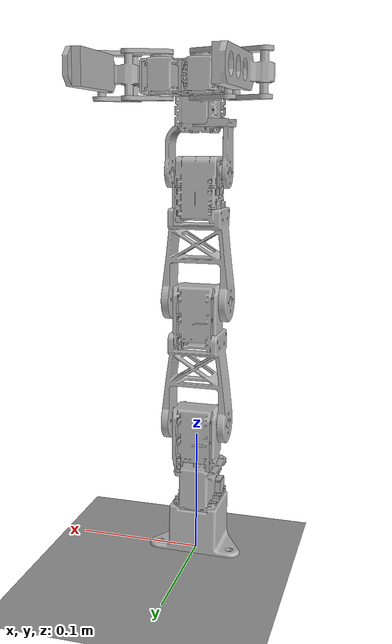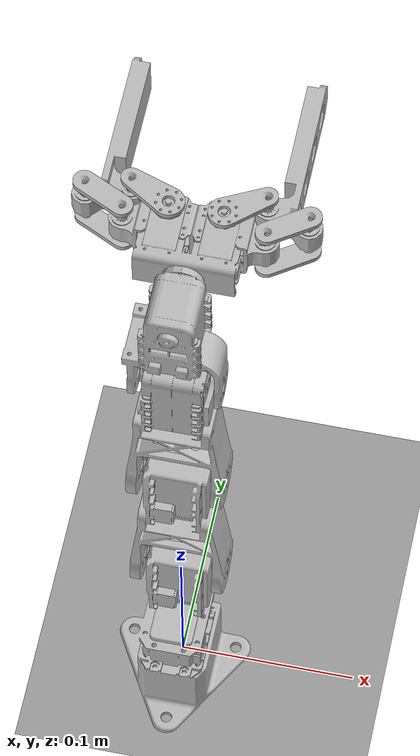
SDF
<sdf version="1.5">
 <world name="default">
  <include><uri>model://sun</uri></include>
  <include><uri>model://ground_with_visual_plugin</uri></include>
  <plugin name="cubefactory_plugin" filename="libcubefactory_plugin.so"/>
  <model name="workspace">
   <include><uri>model://rexarm_gripper</uri></include>
   <plugin name="rexarm_plugin" filename="librexarm_plugin.so"/>
   <joint type="fixed" name="ground_joint">
    <pose>0 0 -0.0542 0 0 0</pose>
    <parent>world</parent>
    <child>rexarm_gripper::rexarm::base</child>
   </joint>
   <link name="end_effector">
    <pose>0 0.12 0.38 0 0 0</pose>
    <inertial>
     <mass>1e-3</mass>
     <inertia><ixx>1e-9</ixx><ixy>0</ixy><ixz>0</ixz><iyy>1e-9</iyy><iyz>0</iyz><izz>1e-9</izz></inertia>
    </inertial>
    <collision name="collision">
     <geometry><cylinder><radius>10e-10</radius><length>10e-10</length></cylinder></geometry>
    </collision>
    <visual name="visual">
     <geometry><cylinder><radius>10e-10</radius><length>10e-10</length></cylinder></geometry>
    </visual>
    <gravity>0</gravity>
   </link>
   <joint type="fixed" name="v_tip_joint">
    <parent>rexarm_gripper::gripper::gp_base</parent>
    <child>end_effector</child>
   </joint>
  </model>
 </world>
</sdf>

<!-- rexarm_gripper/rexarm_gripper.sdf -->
<sdf version='1.5'>
<model name='rexarm_gripper'>
	<include>
		<uri>model://rexarm</uri>
	</include>

	<include>
		<uri>model://gripper</uri>
		<pose>0 0.04 0.38 1.5708 0 1.5708</pose>
	</include>

	<!-- Attach gripper to the arm -->
	<joint type='fixed' name='attach_joint'>
		<pose>0 -0.031 0 0 0 0</pose>
		<parent>rexarm::wrist</parent>
		<child>gripper::gp_wrist</child>
	</joint>
</model>
</sdf>

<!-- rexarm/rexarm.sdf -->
<sdf version='1.5'>
<model name='rexarm'>
    <link name='base'>
        <pose>0 0 0.0542 0 0 0</pose>
        <inertial>
            <mass>0.075</mass>
            <inertia>
                <ixx>2.2649e-05</ixx>
                <ixy>3.6778e-08</ixy>
                <ixz>-2.1305e-07</ixz>
                <iyy>1.2868e-05</iyy>
                <iyz>-1.1145e-06</iyz>
                <izz>1.77331e-05</izz>
            </inertia>
        </inertial>
        <collision name='collision'>
            <geometry>
                <mesh><uri>model://rexarm/meshes/base.dae</uri></mesh>
            </geometry>
        </collision>
        <visual name='visual'>
            <geometry>
                <mesh><uri>model://rexarm/meshes/base.dae</uri></mesh>
            </geometry>
        </visual>
		<gravity>0</gravity>
    </link>
    <link name='shoulder1'>
        <pose>0 0 0.1112 1.5708 0 1.5708</pose>
        <inertial>
            <mass>0.075</mass>
            <inertia>
                <ixx>2.2649e-05</ixx>
                <ixy>3.6778e-08</ixy>
                <ixz>-2.1305e-07</ixz>
                <iyy>1.2868e-05</iyy>
                <iyz>-1.1145e-06</iyz>
                <izz>1.77331e-05</izz>
            </inertia>
        </inertial>
        <collision name='collision'>
            <geometry>
                <mesh><uri>model://rexarm/meshes/shoulder1.dae</uri></mesh>
            </geometry>
        </collision>
        <visual name='visual'>
            <geometry>
                <mesh><uri>model://rexarm/meshes/shoulder1.dae</uri></mesh>
            </geometry>
        </visual>
		<gravity>0</gravity>
    </link>
    <link name='shoulder2'>
        <pose>0 0 0.2117 1.5708 0 1.5708</pose>
        <inertial>
            <mass>0.075</mass>
            <inertia>
                <ixx>2.2649e-05</ixx>
                <ixy>3.6778e-08</ixy>
                <ixz>-2.1305e-07</ixz>
                <iyy>1.2868e-05</iyy>
                <iyz>-1.1145e-06</iyz>
                <izz>1.77331e-05</izz>
            </inertia>
        </inertial>
        <collision name='collision'>
            <geometry>
                <mesh><uri>model://rexarm/meshes/shoulder2.dae</uri></mesh>
            </geometry>
        </collision>
        <visual name='visual'>
            <geometry>
                <mesh><uri>model://rexarm/meshes/shoulder2.dae</uri></mesh>
            </geometry>
        </visual>
		<gravity>0</gravity>
    </link>
    <link name='elbow'>
        <pose>0 0 0.3117 1.5708 0 1.5708</pose>
        <inertial>
            <mass>0.075</mass>
            <inertia>
                <ixx>2.2649e-05</ixx>
                <ixy>3.6778e-08</ixy>
                <ixz>-2.1305e-07</ixz>
                <iyy>1.2868e-05</iyy>
                <iyz>-1.1145e-06</iyz>
                <izz>1.77331e-05</izz>
            </inertia>
        </inertial>
        <collision name='collision'>
            <geometry>
                <mesh><uri>model://rexarm/meshes/elbow.dae</uri></mesh>
            </geometry>
        </collision>
        <visual name='visual'>
            <geometry>
                <mesh><uri>model://rexarm/meshes/elbow.dae</uri></mesh>
            </geometry>
        </visual>
		<gravity>0</gravity>
    </link>
    <link name='wrist'>
        <pose>0 0 0.3117 1.5708 0 1.5708</pose>
        <inertial>
            <mass>10e-10</mass>
            <inertia>
                <ixx>1</ixx>
                <ixy>0</ixy>
                <ixz>0</ixz>
                <iyy>1</iyy>
                <iyz>0</iyz>
                <izz>1</izz>
            </inertia>
        </inertial>
        <collision name='collision'>
            <geometry>
                <mesh><uri>model://rexarm/meshes/wrist.dae</uri></mesh>
            </geometry>
        </collision>
        <visual name='visual'>
            <geometry>
                <mesh><uri>model://rexarm/meshes/wrist.dae</uri></mesh>
            </geometry>
        </visual>
		<gravity>0</gravity>
    </link>
    <joint type='revolute' name='base_joint'>
        <pose>0 -0.039 0 0 0 0</pose>
        <parent>base</parent>
        <child>shoulder1</child>
        <axis>
            <xyz>0 1 0</xyz>
            <limit>
                <lower>-3.14</lower>
                <upper>3.14</upper>
                <effort>0.5</effort>
                <velocity>5.76</velocity>
            </limit>
        </axis>
        <physics>
            <ode>
                <max_force>0.5</max_force>
            </ode>
        </physics>
    </joint>
    <joint type='revolute' name='shoulder_joint'>
        <pose>0 -0.1005 0 0 0 0</pose>
        <parent>shoulder1</parent>
        <child>shoulder2</child>
        <axis>
            <xyz>0 0 1</xyz>
            <limit>
                <lower>-3.14</lower>
                <upper>3.14</upper>
                <effort>0.5</effort>
                <velocity>5.76</velocity>
            </limit>
        </axis>
        <physics>
            <ode>
                <max_force>0.5</max_force>
            </ode>
        </physics>
    </joint>
    <joint type='revolute' name='elbow_joint'>
        <pose>0 -0.1 0 0 0 0</pose>
        <parent>shoulder2</parent>
        <child>elbow</child>
        <axis>
            <xyz>0 0 1</xyz>
            <limit>
                <lower>-3.14</lower>
                <upper>3.14</upper>
                <effort>0.3</effort>
                <velocity>5.76</velocity>
            </limit>
        </axis>
        <physics>
            <ode>
                <max_force>0.3</max_force>
            </ode>
        </physics>
    </joint>
    <joint type='revolute' name='wrist_joint'>
        <pose>0 0 0 0 0 0</pose>
        <parent>elbow</parent>
        <child>wrist</child>
        <axis>
            <xyz>0 0 1</xyz>
            <limit>
                <lower>-3.14</lower>
                <upper>3.14</upper>
                <velocity>0.0298</velocity>
            </limit>
        </axis>
        <physics>
            <ode>
                <max_force>0.3</max_force>
            </ode>
        </physics>
    </joint>
</model>
</sdf>

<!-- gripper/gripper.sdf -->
<sdf version='1.5'>
<model name='gripper'>
		<link name='gp_base'>
        <pose>0 0 0 0 0 0</pose>
        <inertial>
           <mass>0.01</mass>
            <inertia>
                <ixx>1.8869e-06</ixx>
                <ixy>-4.7651e-09</ixy>
                <ixz>2.5e-13</ixz>
                <iyy>2.1174e-06</iyy>
                <iyz>1.4168e-09</iyz>
                <izz>7.1428e-07</izz>
            </inertia>
        </inertial>
        <collision name='collision'>
            <geometry>
                <mesh><uri>model://gripper/meshes/gp_base.dae</uri></mesh>
            </geometry>
        </collision>
        <visual name='visual'>
            <geometry>
                <mesh><uri>model://gripper/meshes/gp_base.dae</uri></mesh>
            </geometry>
        </visual>
				<gravity>0</gravity>
		</link>
		<link name='gp_link_inner1'>
        <pose>0.017 0 -0.023 0 2.09439 0</pose>
        <inertial>
            <mass>0.01</mass>
            <inertia>
                <ixx>8.172282e-7</ixx>
                <ixy>0</ixy>
                <ixz>-9.63323e-8</ixz>
                <iyy>2.967633e-7</iyy>
                <iyz>0</iyz>
                <izz>7.395451e-7</izz>
            </inertia>
        </inertial>
        <collision name='collision'>
            <geometry>
                <mesh><uri>model://gripper/meshes/gp_link_inner.dae</uri></mesh>
            </geometry>
        </collision>
        <visual name='visual'>
            <geometry>
                <mesh><uri>model://gripper/meshes/gp_link_inner.dae</uri></mesh>
            </geometry>
        </visual>
				<gravity>0</gravity>
		</link>
		<link name='gp_link_outter1'>
        <pose>0.0107 0 -0.048 0 2.09439 0</pose>
        <inertial>
            <mass>0.01</mass>
            <inertia>
                <ixx>8.172282e-7</ixx>
                <ixy>0</ixy>
                <ixz>-9.63323e-8</ixz>
                <iyy>2.967633e-7</iyy>
                <iyz>0</iyz>
                <izz>7.395451e-7</izz>
						</inertia>
        </inertial>
        <collision name='collision'>
            <geometry>
                <mesh><uri>model://gripper/meshes/gp_link_outter.dae</uri></mesh>
            </geometry>
        </collision>
        <visual name='visual'>
            <geometry>
                <mesh><uri>model://gripper/meshes/gp_link_outter.dae</uri></mesh>
            </geometry>
        </visual>
				<gravity>0</gravity>
		</link>
		<link name='gp_finger1'>
        <pose>0.0554 0 -0.0473 0 0 0</pose>
        <inertial>
            <mass>0.005</mass>
            <inertia>
                <ixx>1.5229525e-7</ixx>
                <ixy>1.21593e-9</ixy>
                <ixz>-3.432709e-8</ixz>
                <iyy>1.40180695e-6</iyy>
                <iyz>1.854e-11</iyz>
                <izz>1.42294662e-6</izz>
            </inertia>
        </inertial>
        <collision name='collision'>
            <geometry>
                <mesh><uri>model://gripper/meshes/gp_finger.dae</uri></mesh>
            </geometry>
        </collision>
        <visual name='visual'>
            <geometry>
                <mesh><uri>model://gripper/meshes/gp_finger.dae</uri></mesh>
            </geometry>
        </visual>
				<self_collide>1</self_collide>
				<gravity>0</gravity>
		</link>
		<link name='gp_link_inner2'>
        <pose>0.017 0 0.023 0 0 0</pose>
        <inertial>
            <mass>0.01</mass>
            <inertia>
                <ixx>8.172282e-7</ixx>
                <ixy>0</ixy>
                <ixz>-9.63323e-8</ixz>
                <iyy>2.967633e-7</iyy>
                <iyz>0</iyz>
                <izz>7.395451e-7</izz>
						</inertia>
        </inertial>
        <collision name='collision'>
            <geometry>
                <mesh><uri>model://gripper/meshes/gp_link_inner.dae</uri></mesh>
            </geometry>
        </collision>
        <visual name='visual'>
            <geometry>
                <mesh><uri>model://gripper/meshes/gp_link_inner.dae</uri></mesh>
            </geometry>
        </visual>
				<gravity>0</gravity>
		</link>
		<link name='gp_link_outter2'>
        <pose>0.0107 0 0.048 0 0 0</pose>
        <inertial>
             <mass>0.01</mass>
            <inertia>
                <ixx>8.172282e-7</ixx>
                <ixy>0</ixy>
                <ixz>-9.63323e-8</ixz>
                <iyy>2.967633e-7</iyy>
                <iyz>0</iyz>
                <izz>7.395451e-7</izz>
						</inertia>
        </inertial>
        <collision name='collision'>
            <geometry>
                <mesh><uri>model://gripper/meshes/gp_link_outter.dae</uri></mesh>
            </geometry>
        </collision>
        <visual name='visual'>
            <geometry>
                <mesh><uri>model://gripper/meshes/gp_link_outter.dae</uri></mesh>
            </geometry>
        </visual>
				<gravity>0</gravity>
		</link>
		<link name='gp_finger2'>
        <pose>0.0575 0 0.046 3.1415 0 0</pose>
        <inertial>
            <mass>0.005</mass>
            <inertia>
                <ixx>1.5229525e-7</ixx>
                <ixy>1.21593e-9</ixy>
                <ixz>-3.432709e-8</ixz>
                <iyy>1.40180695e-6</iyy>
                <iyz>1.854e-11</iyz>
                <izz>1.42294662e-6</izz>
            </inertia>
        </inertial>
        <collision name='collision'>
            <geometry>
                <mesh><uri>model://gripper/meshes/gp_finger.dae</uri></mesh>
            </geometry>
        </collision>
        <visual name='visual'>
            <geometry>
                <mesh><uri>model://gripper/meshes/gp_finger.dae</uri></mesh>
            </geometry>
        </visual>
				<self_collide>1</self_collide>
				<gravity>0</gravity>
		</link>
		<link name='gp_wrist'>
        <pose>-4.15e-2 0 0 0 1.5708 0</pose>
        <inertial>
            <mass>0.075</mass>
            <inertia>
                <ixx>2.2649e-05</ixx>
                <ixy>3.6778e-08</ixy>
                <ixz>-2.1305e-07</ixz>
                <iyy>1.2868e-05</iyy>
                <iyz>-1.1145e-06</iyz>
                <izz>1.77331e-05</izz>
            </inertia>
        </inertial>
        <collision name='collision'>
            <geometry>
                <mesh><uri>model://gripper/meshes/AX_12A.dae</uri></mesh>
            </geometry>
        </collision>
        <visual name='visual'>
            <geometry>
                <mesh><uri>model://gripper/meshes/AX_12A.dae</uri></mesh>
            </geometry>
        </visual>
				<gravity>0</gravity>
		</link>
		<joint type='revolute' name='joint1_1a'>
        <pose>-5.2e-3 0 -8.5e-3 0 0 0</pose>
        <parent>gp_base</parent>
        <child>gp_link_inner1</child>
        <axis>
            <xyz>0 1 0</xyz>
            <limit>
                <lower>-0.4</lower>
                <upper>0</upper>
                <velocity>0.0298</velocity>
            </limit>
			<use_parent_model_frame>1</use_parent_model_frame>
        </axis>
        <physics>
            <ode>
                <max_force>0.3</max_force>
            </ode>
        </physics>
    	</joint>
		<joint type='fixed' name='joint1_1b'>
        <pose>-3.25e-2 0 1.15e-2 0 0 0</pose>
        <parent>gp_link_inner1</parent>
        <child>gp_finger1</child>
        <axis>
            <xyz>0 1 0</xyz>
            <limit>
                <lower>-3.14</lower>
                <upper>3.14</upper>
                <velocity>0.0298</velocity>
            </limit>
			<use_parent_model_frame>1</use_parent_model_frame>
        </axis>
        <physics>
            <ode>
                <max_force>0.3</max_force>
            </ode>
        </physics>
    </joint>
		<joint type='fixed' name='joint1_2b'>
        <pose>-3.95e-2 0 -1.172e-2 0 0 0</pose>
        <parent>gp_link_outter1</parent>
        <child>gp_finger1</child>
        <axis>
            <xyz>0 1 0</xyz>
            <limit>
                <lower>-3.14</lower>
                <upper>3.14</upper>
                <velocity>0.0298</velocity>
            </limit>
			<use_parent_model_frame>1</use_parent_model_frame>
        </axis>
        <physics>
            <ode>
                <max_force>0.3</max_force>
            </ode>
        </physics>
    </joint>
		<joint type='revolute' name='joint2_1a'>
        <pose>-5.2e-3 0 -8.5e-3 0 0 0</pose>
        <parent>gp_base</parent>
        <child>gp_link_inner2</child>
        <axis>
            <xyz>0 1 0</xyz>
            <limit>
                <lower>0</lower>
                <upper>0.4</upper>
                <velocity>0.0298</velocity>
            </limit>
				<use_parent_model_frame>1</use_parent_model_frame>
        </axis>
        <physics>
            <ode>
                <max_force>0.3</max_force>
            </ode>
        </physics>
    	</joint>
		<joint type='fixed' name='joint2_1b'>
        <pose>-3.25e-2 0 1.15e-2 3.1415 0 0</pose>
        <parent>gp_link_inner2</parent>
        <child>gp_finger2</child>
        <axis>
            <xyz>0 1 0</xyz>
            <limit>
                <lower>-3.14</lower>
                <upper>3.14</upper>
                <velocity>0.0298</velocity>
            </limit>
			<use_parent_model_frame>1</use_parent_model_frame>
        </axis>
        <physics>
            <ode>
                <max_force>0.3</max_force>
            </ode>
        </physics>
    </joint>
		<joint type='fixed' name='joint2_2b'>
        <pose>-4e-2 0 -1.178e-2 0 0 0</pose>
        <parent>gp_link_outter2</parent>
        <child>gp_finger2</child>
        <axis>
            <xyz>0 1 0</xyz>
            <limit>
                <lower>-3.14</lower>
                <upper>3.14</upper>
                <velocity>0.0298</velocity>
            </limit>
			<use_parent_model_frame>1</use_parent_model_frame>
        </axis>
        <physics>
            <ode>
                <max_force>0.3</max_force>
            </ode>
        </physics>
    </joint>
		<joint type='revolute' name='wrist_joint'>
        <pose>-2e-2 0 0 0 0 0</pose>
        <parent>gp_wrist</parent>
        <child>gp_base</child>
        <axis>
            <xyz>1 0 0</xyz>
            <limit>
                <lower>-3.14</lower>
                <upper>3.14</upper>
                <velocity>0.0298</velocity>
            </limit>
			<use_parent_model_frame>1</use_parent_model_frame>
        </axis>
        <physics>
            <ode>
                <max_force>0.3</max_force>
            </ode>
        </physics>
    </joint>
		<gripper name='four_bar_gp'>
				<grasp_check>
						<detach_steps>40</detach_steps>
						<attach_steps>20</attach_steps>
						<min_contact_count>2</min_contact_count>
				</grasp_check>

				<gripper_link>gripper::gp_finger1</gripper_link>
				<gripper_link>gripper::gp_finger2</gripper_link>

				<palm_link>gripper::gp_base</palm_link>
				<palm_link>gripper::gp_wrist</palm_link>
				<palm_link>gripper::gp_link_inner1</palm_link>
				<palm_link>gripper::gp_link_outter1</palm_link>
				<palm_link>gripper::gp_link_inner2</palm_link>
				<palm_link>gripper::gp_link_outter2</palm_link>
		</gripper>
</model>
</sdf>

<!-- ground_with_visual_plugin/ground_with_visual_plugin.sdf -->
<sdf version="1.5">
  <model name="ground_plane">
    <static>true</static>
    <link name="link">
      <collision name="collision">
        <geometry>
          <plane>
            <normal>0 0 1</normal>
            <size>100 100</size>
          </plane>
        </geometry>
        <surface>
          <friction>
            <ode>
              <mu>100</mu>
              <mu2>50</mu2>
            </ode>
          </friction>
        </surface>
      </collision>
      <visual name="visual">
        <cast_shadows>false</cast_shadows>
	<plugin name="trjmarker_plugin" filename="libtrjmarker_plugin.so"/>
        <geometry>
          <plane>
            <normal>0 0 1</normal>
            <size>100 100</size>
          </plane>
        </geometry>
        <material>
          <script>
            <uri>file://media/materials/scripts/gazebo.material</uri>
            <name>Gazebo/Grey</name>
          </script>
        </material>
      </visual>
    </link>
  </model>
</sdf>
